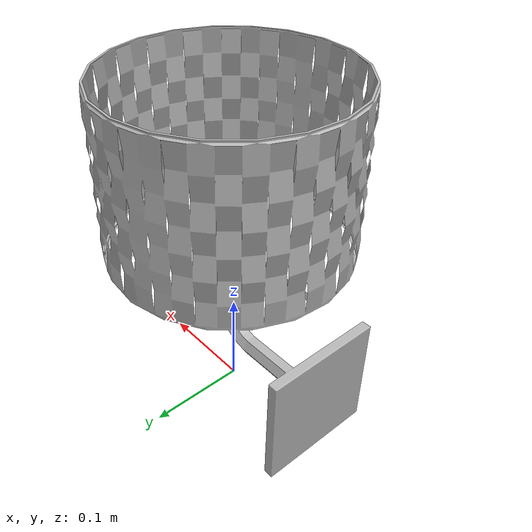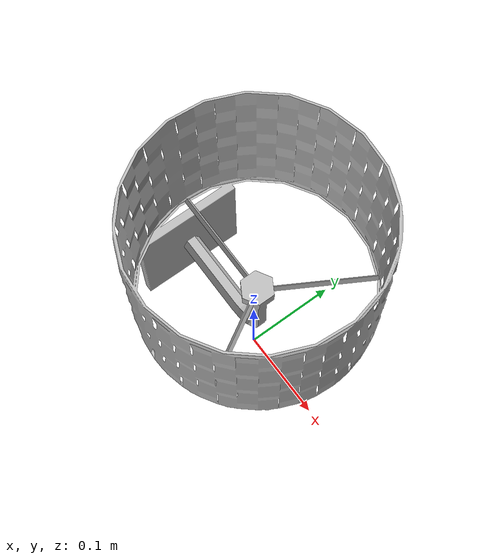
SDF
<?xml version='1.0'?>
<sdf version='1.4'>
  <model name='s__763'>
    <pose>0 0 0 0 0 0</pose>
    <static>true</static>
    <link name='link'>
      <collision name='collision'>
        <pose>0 0 0 0 0 0</pose>
        <geometry>
          <box>
            <size>0.249988 0.239976 2</size>
          </box>
        </geometry>
      </collision>
      <visual name='visual'>
        <pose>0 0 0 0 0 0</pose>
        <geometry>
          <mesh><uri>model://s__763/s__763.dae</uri></mesh>
        </geometry>
      </visual>
    </link>
  </model>
</sdf>
